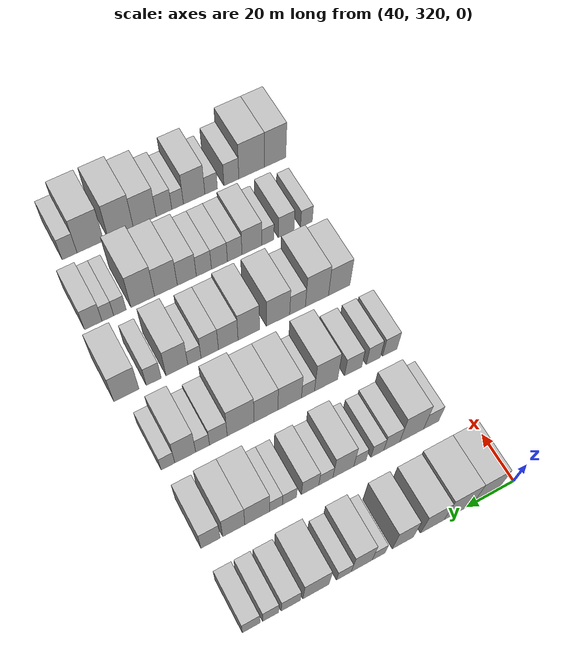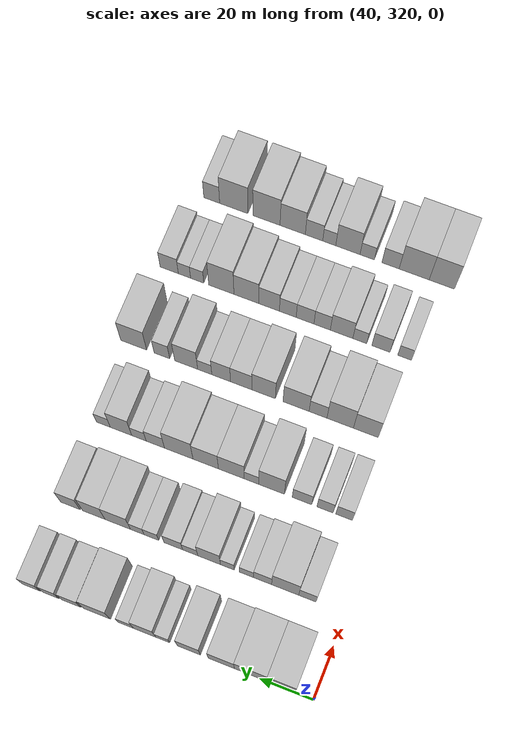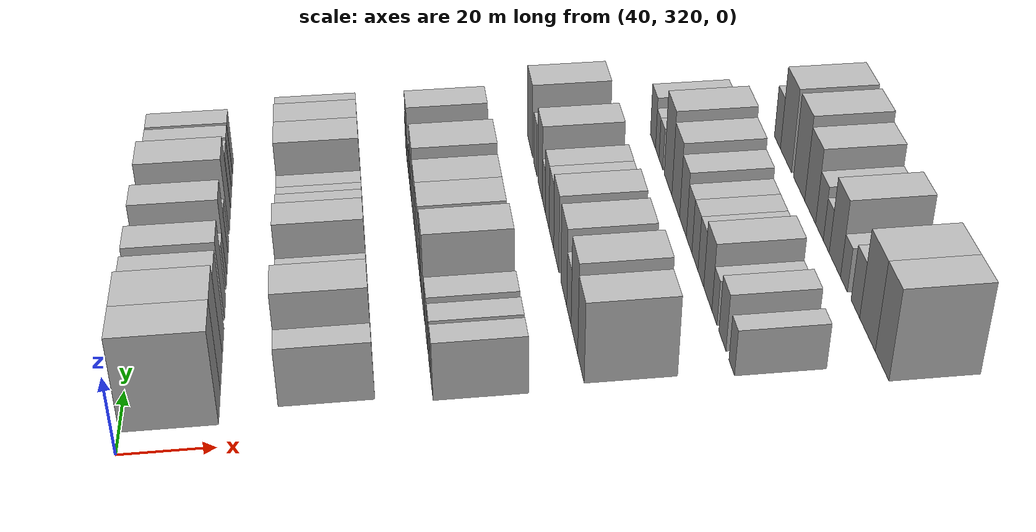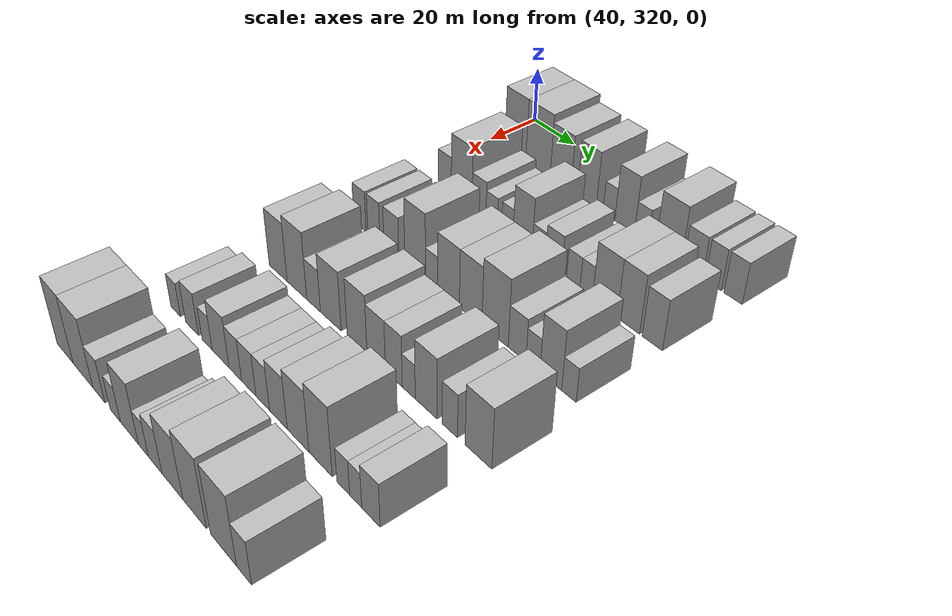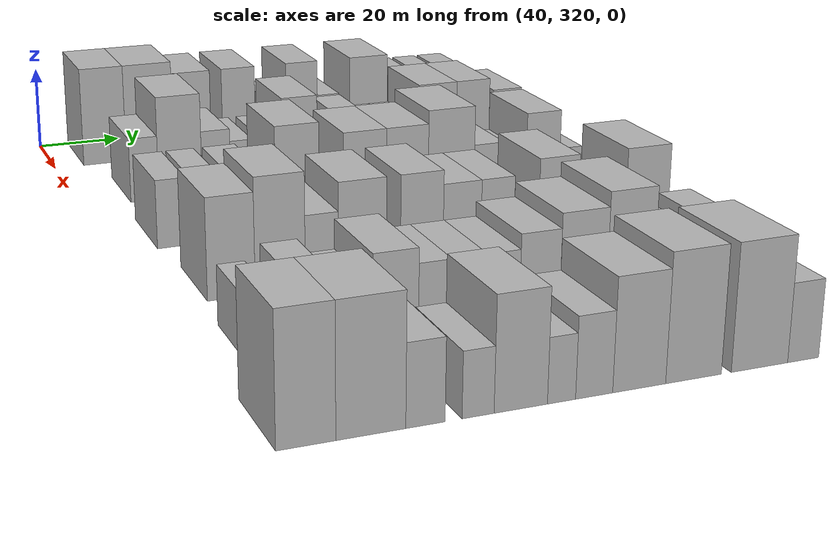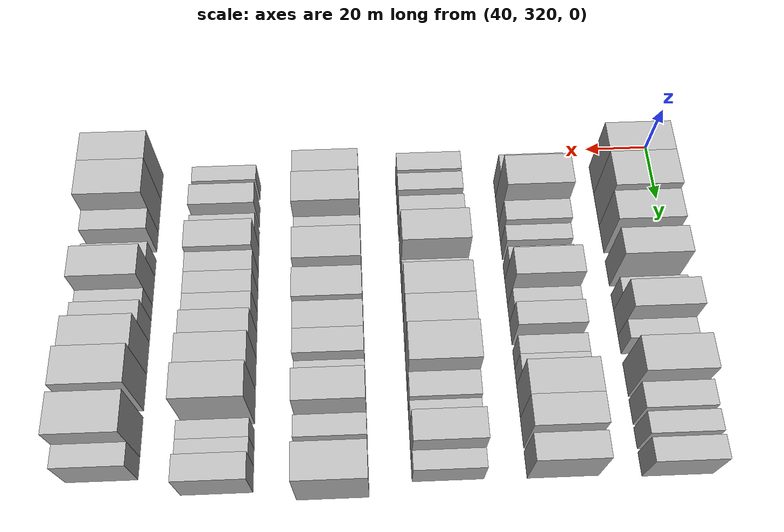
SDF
<sdf version="1.6">
 <world name="default">
  <model name="building_101">
   <static>1</static>
   <pose>50.0000 332.2577 0 0.000000 0.000000 0.000000</pose>
   <link name="link">
    <pose>0 0 12.00 0 0 0</pose>
    <collision name="collision"><geometry><box><size>20.0000 10.5424 24.0000</size></box></geometry></collision>
    <visual name="visual">
     <cast_shadows>0</cast_shadows>
     <geometry><box><size>20.0000 10.5424 24.0000</size></box></geometry>
     <material>
      <script>
       <uri>model://HANNAS_wall/materials/scripts</uri>
       <uri>model://HANNAS_wall/materials/textures</uri>
       <name>vrc/HANNAS_wall</name>
      </script>
     </material>
    </visual>
   </link>
  </model>
  <model name="building_102">
   <static>1</static>
   <pose>50.0000 343.5091 0 0.000000 0.000000 0.000000</pose>
   <link name="link">
    <pose>0 0 12.00 0 0 0</pose>
    <collision name="collision"><geometry><box><size>20.0000 11.9602 24.0000</size></box></geometry></collision>
    <visual name="visual">
     <cast_shadows>0</cast_shadows>
     <geometry><box><size>20.0000 11.9602 24.0000</size></box></geometry>
     <material>
      <script>
       <uri>model://HANNAS_wall/materials/scripts</uri>
       <uri>model://HANNAS_wall/materials/textures</uri>
       <name>vrc/HANNAS_wall</name>
      </script>
     </material>
    </visual>
   </link>
  </model>
  <model name="building_103">
   <static>1</static>
   <pose>50.0000 354.3774 0 0.000000 0.000000 0.000000</pose>
   <link name="link">
    <pose>0 0 10.50 0 0 0</pose>
    <collision name="collision"><geometry><box><size>20.0000 9.7764 21.0000</size></box></geometry></collision>
    <visual name="visual">
     <cast_shadows>0</cast_shadows>
     <geometry><box><size>20.0000 9.7764 21.0000</size></box></geometry>
     <material>
      <script>
       <uri>model://HANNAS_wall/materials/scripts</uri>
       <uri>model://HANNAS_wall/materials/textures</uri>
       <name>vrc/HANNAS_wall</name>
      </script>
     </material>
    </visual>
   </link>
  </model>
  <model name="building_104">
   <static>1</static>
   <pose>50.0000 366.5561 0 0.000000 0.000000 0.000000</pose>
   <link name="link">
    <pose>0 0 10.50 0 0 0</pose>
    <collision name="collision"><geometry><box><size>20.0000 8.5810 21.0000</size></box></geometry></collision>
    <visual name="visual">
     <cast_shadows>0</cast_shadows>
     <geometry><box><size>20.0000 8.5810 21.0000</size></box></geometry>
     <material>
      <script>
       <uri>model://HANNAS_wall/materials/scripts</uri>
       <uri>model://HANNAS_wall/materials/textures</uri>
       <name>vrc/HANNAS_wall</name>
      </script>
     </material>
    </visual>
   </link>
  </model>
  <model name="building_105">
   <static>1</static>
   <pose>50.0000 376.4607 0 0.000000 0.000000 0.000000</pose>
   <link name="link">
    <pose>0 0 6.00 0 0 0</pose>
    <collision name="collision"><geometry><box><size>20.0000 5.2283 12.0000</size></box></geometry></collision>
    <visual name="visual">
     <cast_shadows>0</cast_shadows>
     <geometry><box><size>20.0000 5.2283 12.0000</size></box></geometry>
     <material>
      <script>
       <uri>model://HANNAS_wall/materials/scripts</uri>
       <uri>model://HANNAS_wall/materials/textures</uri>
       <name>vrc/HANNAS_wall</name>
      </script>
     </material>
    </visual>
   </link>
  </model>
  <model name="building_106">
   <static>1</static>
   <pose>50.0000 383.2812 0 0.000000 0.000000 0.000000</pose>
   <link name="link">
    <pose>0 0 10.50 0 0 0</pose>
    <collision name="collision"><geometry><box><size>20.0000 8.4127 21.0000</size></box></geometry></collision>
    <visual name="visual">
     <cast_shadows>0</cast_shadows>
     <geometry><box><size>20.0000 8.4127 21.0000</size></box></geometry>
     <material>
      <script>
       <uri>model://HANNAS_wall/materials/scripts</uri>
       <uri>model://HANNAS_wall/materials/textures</uri>
       <name>vrc/HANNAS_wall</name>
      </script>
     </material>
    </visual>
   </link>
  </model>
  <model name="building_107">
   <static>1</static>
   <pose>50.0000 390.4088 0 0.000000 0.000000 0.000000</pose>
   <link name="link">
    <pose>0 0 6.00 0 0 0</pose>
    <collision name="collision"><geometry><box><size>20.0000 5.8426 12.0000</size></box></geometry></collision>
    <visual name="visual">
     <cast_shadows>0</cast_shadows>
     <geometry><box><size>20.0000 5.8426 12.0000</size></box></geometry>
     <material>
      <script>
       <uri>model://HANNAS_wall/materials/scripts</uri>
       <uri>model://HANNAS_wall/materials/textures</uri>
       <name>vrc/HANNAS_wall</name>
      </script>
     </material>
    </visual>
   </link>
  </model>
  <model name="building_108">
   <static>1</static>
   <pose>50.0000 401.4791 0 0.000000 0.000000 0.000000</pose>
   <link name="link">
    <pose>0 0 10.50 0 0 0</pose>
    <collision name="collision"><geometry><box><size>20.0000 10.2979 21.0000</size></box></geometry></collision>
    <visual name="visual">
     <cast_shadows>0</cast_shadows>
     <geometry><box><size>20.0000 10.2979 21.0000</size></box></geometry>
     <material>
      <script>
       <uri>model://HANNAS_wall/materials/scripts</uri>
       <uri>model://HANNAS_wall/materials/textures</uri>
       <name>vrc/HANNAS_wall</name>
      </script>
     </material>
    </visual>
   </link>
  </model>
  <model name="building_109">
   <static>1</static>
   <pose>50.0000 411.3379 0 0.000000 0.000000 0.000000</pose>
   <link name="link">
    <pose>0 0 7.50 0 0 0</pose>
    <collision name="collision"><geometry><box><size>20.0000 7.4198 15.0000</size></box></geometry></collision>
    <visual name="visual">
     <cast_shadows>0</cast_shadows>
     <geometry><box><size>20.0000 7.4198 15.0000</size></box></geometry>
     <material>
      <script>
       <uri>model://HANNAS_wall/materials/scripts</uri>
       <uri>model://HANNAS_wall/materials/textures</uri>
       <name>vrc/HANNAS_wall</name>
      </script>
     </material>
    </visual>
   </link>
  </model>
  <model name="building_110">
   <static>1</static>
   <pose>50.0000 419.1417 0 0.000000 0.000000 0.000000</pose>
   <link name="link">
    <pose>0 0 7.50 0 0 0</pose>
    <collision name="collision"><geometry><box><size>20.0000 6.1877 15.0000</size></box></geometry></collision>
    <visual name="visual">
     <cast_shadows>0</cast_shadows>
     <geometry><box><size>20.0000 6.1877 15.0000</size></box></geometry>
     <material>
      <script>
       <uri>model://HANNAS_wall/materials/scripts</uri>
       <uri>model://HANNAS_wall/materials/textures</uri>
       <name>vrc/HANNAS_wall</name>
      </script>
     </material>
    </visual>
   </link>
  </model>
  <model name="building_111">
   <static>1</static>
   <pose>50.0000 426.6084 0 0.000000 0.000000 0.000000</pose>
   <link name="link">
    <pose>0 0 7.50 0 0 0</pose>
    <collision name="collision"><geometry><box><size>20.0000 6.7458 15.0000</size></box></geometry></collision>
    <visual name="visual">
     <cast_shadows>0</cast_shadows>
     <geometry><box><size>20.0000 6.7458 15.0000</size></box></geometry>
     <material>
      <script>
       <uri>model://HANNAS_wall/materials/scripts</uri>
       <uri>model://HANNAS_wall/materials/textures</uri>
       <name>vrc/HANNAS_wall</name>
      </script>
     </material>
    </visual>
   </link>
  </model>
  <model name="building_215">
   <static>1</static>
   <pose>82.0000 334.5131 0 0.000000 0.000000 0.000000</pose>
   <link name="link">
    <pose>0 0 7.50 0 0 0</pose>
    <collision name="collision"><geometry><box><size>20.0000 6.5370 15.0000</size></box></geometry></collision>
    <visual name="visual">
     <cast_shadows>0</cast_shadows>
     <geometry><box><size>20.0000 6.5370 15.0000</size></box></geometry>
     <material>
      <script>
       <uri>model://HANNAS_wall/materials/scripts</uri>
       <uri>model://HANNAS_wall/materials/textures</uri>
       <name>vrc/HANNAS_wall</name>
      </script>
     </material>
    </visual>
   </link>
  </model>
  <model name="building_216">
   <static>1</static>
   <pose>82.0000 342.9099 0 0.000000 0.000000 0.000000</pose>
   <link name="link">
    <pose>0 0 12.00 0 0 0</pose>
    <collision name="collision"><geometry><box><size>20.0000 10.2567 24.0000</size></box></geometry></collision>
    <visual name="visual">
     <cast_shadows>0</cast_shadows>
     <geometry><box><size>20.0000 10.2567 24.0000</size></box></geometry>
     <material>
      <script>
       <uri>model://HANNAS_wall/materials/scripts</uri>
       <uri>model://HANNAS_wall/materials/textures</uri>
       <name>vrc/HANNAS_wall</name>
      </script>
     </material>
    </visual>
   </link>
  </model>
  <model name="building_217">
   <static>1</static>
   <pose>82.0000 351.4489 0 0.000000 0.000000 0.000000</pose>
   <link name="link">
    <pose>0 0 7.50 0 0 0</pose>
    <collision name="collision"><geometry><box><size>20.0000 6.8213 15.0000</size></box></geometry></collision>
    <visual name="visual">
     <cast_shadows>0</cast_shadows>
     <geometry><box><size>20.0000 6.8213 15.0000</size></box></geometry>
     <material>
      <script>
       <uri>model://HANNAS_wall/materials/scripts</uri>
       <uri>model://HANNAS_wall/materials/textures</uri>
       <name>vrc/HANNAS_wall</name>
      </script>
     </material>
    </visual>
   </link>
  </model>
  <model name="building_218">
   <static>1</static>
   <pose>82.0000 357.5694 0 0.000000 0.000000 0.000000</pose>
   <link name="link">
    <pose>0 0 6.00 0 0 0</pose>
    <collision name="collision"><geometry><box><size>20.0000 5.4196 12.0000</size></box></geometry></collision>
    <visual name="visual">
     <cast_shadows>0</cast_shadows>
     <geometry><box><size>20.0000 5.4196 12.0000</size></box></geometry>
     <material>
      <script>
       <uri>model://HANNAS_wall/materials/scripts</uri>
       <uri>model://HANNAS_wall/materials/textures</uri>
       <name>vrc/HANNAS_wall</name>
      </script>
     </material>
    </visual>
   </link>
  </model>
  <model name="building_219">
   <static>1</static>
   <pose>82.0000 364.8891 0 0.000000 0.000000 0.000000</pose>
   <link name="link">
    <pose>0 0 6.00 0 0 0</pose>
    <collision name="collision"><geometry><box><size>20.0000 5.2198 12.0000</size></box></geometry></collision>
    <visual name="visual">
     <cast_shadows>0</cast_shadows>
     <geometry><box><size>20.0000 5.2198 12.0000</size></box></geometry>
     <material>
      <script>
       <uri>model://HANNAS_wall/materials/scripts</uri>
       <uri>model://HANNAS_wall/materials/textures</uri>
       <name>vrc/HANNAS_wall</name>
      </script>
     </material>
    </visual>
   </link>
  </model>
  <model name="building_220">
   <static>1</static>
   <pose>82.0000 371.8438 0 0.000000 0.000000 0.000000</pose>
   <link name="link">
    <pose>0 0 10.50 0 0 0</pose>
    <collision name="collision"><geometry><box><size>20.0000 8.6897 21.0000</size></box></geometry></collision>
    <visual name="visual">
     <cast_shadows>0</cast_shadows>
     <geometry><box><size>20.0000 8.6897 21.0000</size></box></geometry>
     <material>
      <script>
       <uri>model://HANNAS_wall/materials/scripts</uri>
       <uri>model://HANNAS_wall/materials/textures</uri>
       <name>vrc/HANNAS_wall</name>
      </script>
     </material>
    </visual>
   </link>
  </model>
  <model name="building_221">
   <static>1</static>
   <pose>82.0000 379.0922 0 0.000000 0.000000 0.000000</pose>
   <link name="link">
    <pose>0 0 6.00 0 0 0</pose>
    <collision name="collision"><geometry><box><size>20.0000 5.8070 12.0000</size></box></geometry></collision>
    <visual name="visual">
     <cast_shadows>0</cast_shadows>
     <geometry><box><size>20.0000 5.8070 12.0000</size></box></geometry>
     <material>
      <script>
       <uri>model://HANNAS_wall/materials/scripts</uri>
       <uri>model://HANNAS_wall/materials/textures</uri>
       <name>vrc/HANNAS_wall</name>
      </script>
     </material>
    </visual>
   </link>
  </model>
  <model name="building_222">
   <static>1</static>
   <pose>82.0000 385.5773 0 0.000000 0.000000 0.000000</pose>
   <link name="link">
    <pose>0 0 7.50 0 0 0</pose>
    <collision name="collision"><geometry><box><size>20.0000 7.1633 15.0000</size></box></geometry></collision>
    <visual name="visual">
     <cast_shadows>0</cast_shadows>
     <geometry><box><size>20.0000 7.1633 15.0000</size></box></geometry>
     <material>
      <script>
       <uri>model://HANNAS_wall/materials/scripts</uri>
       <uri>model://HANNAS_wall/materials/textures</uri>
       <name>vrc/HANNAS_wall</name>
      </script>
     </material>
    </visual>
   </link>
  </model>
  <model name="building_223">
   <static>1</static>
   <pose>82.0000 394.0076 0 0.000000 0.000000 0.000000</pose>
   <link name="link">
    <pose>0 0 6.00 0 0 0</pose>
    <collision name="collision"><geometry><box><size>20.0000 5.6974 12.0000</size></box></geometry></collision>
    <visual name="visual">
     <cast_shadows>0</cast_shadows>
     <geometry><box><size>20.0000 5.6974 12.0000</size></box></geometry>
     <material>
      <script>
       <uri>model://HANNAS_wall/materials/scripts</uri>
       <uri>model://HANNAS_wall/materials/textures</uri>
       <name>vrc/HANNAS_wall</name>
      </script>
     </material>
    </visual>
   </link>
  </model>
  <model name="building_224">
   <static>1</static>
   <pose>82.0000 399.4667 0 0.000000 0.000000 0.000000</pose>
   <link name="link">
    <pose>0 0 6.00 0 0 0</pose>
    <collision name="collision"><geometry><box><size>20.0000 5.2207 12.0000</size></box></geometry></collision>
    <visual name="visual">
     <cast_shadows>0</cast_shadows>
     <geometry><box><size>20.0000 5.2207 12.0000</size></box></geometry>
     <material>
      <script>
       <uri>model://HANNAS_wall/materials/scripts</uri>
       <uri>model://HANNAS_wall/materials/textures</uri>
       <name>vrc/HANNAS_wall</name>
      </script>
     </material>
    </visual>
   </link>
  </model>
  <model name="building_225">
   <static>1</static>
   <pose>82.0000 407.0209 0 0.000000 0.000000 0.000000</pose>
   <link name="link">
    <pose>0 0 10.50 0 0 0</pose>
    <collision name="collision"><geometry><box><size>20.0000 9.8878 21.0000</size></box></geometry></collision>
    <visual name="visual">
     <cast_shadows>0</cast_shadows>
     <geometry><box><size>20.0000 9.8878 21.0000</size></box></geometry>
     <material>
      <script>
       <uri>model://HANNAS_wall/materials/scripts</uri>
       <uri>model://HANNAS_wall/materials/textures</uri>
       <name>vrc/HANNAS_wall</name>
      </script>
     </material>
    </visual>
   </link>
  </model>
  <model name="building_226">
   <static>1</static>
   <pose>82.0000 416.3304 0 0.000000 0.000000 0.000000</pose>
   <link name="link">
    <pose>0 0 10.50 0 0 0</pose>
    <collision name="collision"><geometry><box><size>20.0000 8.7313 21.0000</size></box></geometry></collision>
    <visual name="visual">
     <cast_shadows>0</cast_shadows>
     <geometry><box><size>20.0000 8.7313 21.0000</size></box></geometry>
     <material>
      <script>
       <uri>model://HANNAS_wall/materials/scripts</uri>
       <uri>model://HANNAS_wall/materials/textures</uri>
       <name>vrc/HANNAS_wall</name>
      </script>
     </material>
    </visual>
   </link>
  </model>
  <model name="building_227">
   <static>1</static>
   <pose>82.0000 425.4866 0 0.000000 0.000000 0.000000</pose>
   <link name="link">
    <pose>0 0 9.00 0 0 0</pose>
    <collision name="collision"><geometry><box><size>20.0000 7.5811 18.0000</size></box></geometry></collision>
    <visual name="visual">
     <cast_shadows>0</cast_shadows>
     <geometry><box><size>20.0000 7.5811 18.0000</size></box></geometry>
     <material>
      <script>
       <uri>model://HANNAS_wall/materials/scripts</uri>
       <uri>model://HANNAS_wall/materials/textures</uri>
       <name>vrc/HANNAS_wall</name>
      </script>
     </material>
    </visual>
   </link>
  </model>
  <model name="building_332">
   <static>1</static>
   <pose>114.0000 332.6350 0 0.000000 0.000000 0.000000</pose>
   <link name="link">
    <pose>0 0 7.50 0 0 0</pose>
    <collision name="collision"><geometry><box><size>20.0000 6.4068 15.0000</size></box></geometry></collision>
    <visual name="visual">
     <cast_shadows>0</cast_shadows>
     <geometry><box><size>20.0000 6.4068 15.0000</size></box></geometry>
     <material>
      <script>
       <uri>model://HANNAS_wall/materials/scripts</uri>
       <uri>model://HANNAS_wall/materials/textures</uri>
       <name>vrc/HANNAS_wall</name>
      </script>
     </material>
    </visual>
   </link>
  </model>
  <model name="building_333">
   <static>1</static>
   <pose>114.0000 339.9353 0 0.000000 0.000000 0.000000</pose>
   <link name="link">
    <pose>0 0 7.50 0 0 0</pose>
    <collision name="collision"><geometry><box><size>20.0000 6.1939 15.0000</size></box></geometry></collision>
    <visual name="visual">
     <cast_shadows>0</cast_shadows>
     <geometry><box><size>20.0000 6.1939 15.0000</size></box></geometry>
     <material>
      <script>
       <uri>model://HANNAS_wall/materials/scripts</uri>
       <uri>model://HANNAS_wall/materials/textures</uri>
       <name>vrc/HANNAS_wall</name>
      </script>
     </material>
    </visual>
   </link>
  </model>
  <model name="building_334">
   <static>1</static>
   <pose>114.0000 348.7750 0 0.000000 0.000000 0.000000</pose>
   <link name="link">
    <pose>0 0 7.50 0 0 0</pose>
    <collision name="collision"><geometry><box><size>20.0000 7.4856 15.0000</size></box></geometry></collision>
    <visual name="visual">
     <cast_shadows>0</cast_shadows>
     <geometry><box><size>20.0000 7.4856 15.0000</size></box></geometry>
     <material>
      <script>
       <uri>model://HANNAS_wall/materials/scripts</uri>
       <uri>model://HANNAS_wall/materials/textures</uri>
       <name>vrc/HANNAS_wall</name>
      </script>
     </material>
    </visual>
   </link>
  </model>
  <model name="building_335">
   <static>1</static>
   <pose>114.0000 360.4987 0 0.000000 0.000000 0.000000</pose>
   <link name="link">
    <pose>0 0 12.00 0 0 0</pose>
    <collision name="collision"><geometry><box><size>20.0000 9.9618 24.0000</size></box></geometry></collision>
    <visual name="visual">
     <cast_shadows>0</cast_shadows>
     <geometry><box><size>20.0000 9.9618 24.0000</size></box></geometry>
     <material>
      <script>
       <uri>model://HANNAS_wall/materials/scripts</uri>
       <uri>model://HANNAS_wall/materials/textures</uri>
       <name>vrc/HANNAS_wall</name>
      </script>
     </material>
    </visual>
   </link>
  </model>
  <model name="building_336">
   <static>1</static>
   <pose>114.0000 368.2742 0 0.000000 0.000000 0.000000</pose>
   <link name="link">
    <pose>0 0 6.00 0 0 0</pose>
    <collision name="collision"><geometry><box><size>20.0000 5.5891 12.0000</size></box></geometry></collision>
    <visual name="visual">
     <cast_shadows>0</cast_shadows>
     <geometry><box><size>20.0000 5.5891 12.0000</size></box></geometry>
     <material>
      <script>
       <uri>model://HANNAS_wall/materials/scripts</uri>
       <uri>model://HANNAS_wall/materials/textures</uri>
       <name>vrc/HANNAS_wall</name>
      </script>
     </material>
    </visual>
   </link>
  </model>
  <model name="building_337">
   <static>1</static>
   <pose>114.0000 376.0757 0 0.000000 0.000000 0.000000</pose>
   <link name="link">
    <pose>0 0 10.50 0 0 0</pose>
    <collision name="collision"><geometry><box><size>20.0000 10.0140 21.0000</size></box></geometry></collision>
    <visual name="visual">
     <cast_shadows>0</cast_shadows>
     <geometry><box><size>20.0000 10.0140 21.0000</size></box></geometry>
     <material>
      <script>
       <uri>model://HANNAS_wall/materials/scripts</uri>
       <uri>model://HANNAS_wall/materials/textures</uri>
       <name>vrc/HANNAS_wall</name>
      </script>
     </material>
    </visual>
   </link>
  </model>
  <model name="building_338">
   <static>1</static>
   <pose>114.0000 386.0358 0 0.000000 0.000000 0.000000</pose>
   <link name="link">
    <pose>0 0 10.50 0 0 0</pose>
    <collision name="collision"><geometry><box><size>20.0000 9.9062 21.0000</size></box></geometry></collision>
    <visual name="visual">
     <cast_shadows>0</cast_shadows>
     <geometry><box><size>20.0000 9.9062 21.0000</size></box></geometry>
     <material>
      <script>
       <uri>model://HANNAS_wall/materials/scripts</uri>
       <uri>model://HANNAS_wall/materials/textures</uri>
       <name>vrc/HANNAS_wall</name>
      </script>
     </material>
    </visual>
   </link>
  </model>
  <model name="building_339">
   <static>1</static>
   <pose>114.0000 396.5559 0 0.000000 0.000000 0.000000</pose>
   <link name="link">
    <pose>0 0 12.00 0 0 0</pose>
    <collision name="collision"><geometry><box><size>20.0000 11.1340 24.0000</size></box></geometry></collision>
    <visual name="visual">
     <cast_shadows>0</cast_shadows>
     <geometry><box><size>20.0000 11.1340 24.0000</size></box></geometry>
     <material>
      <script>
       <uri>model://HANNAS_wall/materials/scripts</uri>
       <uri>model://HANNAS_wall/materials/textures</uri>
       <name>vrc/HANNAS_wall</name>
      </script>
     </material>
    </visual>
   </link>
  </model>
  <model name="building_340">
   <static>1</static>
   <pose>114.0000 405.7410 0 0.000000 0.000000 0.000000</pose>
   <link name="link">
    <pose>0 0 7.50 0 0 0</pose>
    <collision name="collision"><geometry><box><size>20.0000 7.2362 15.0000</size></box></geometry></collision>
    <visual name="visual">
     <cast_shadows>0</cast_shadows>
     <geometry><box><size>20.0000 7.2362 15.0000</size></box></geometry>
     <material>
      <script>
       <uri>model://HANNAS_wall/materials/scripts</uri>
       <uri>model://HANNAS_wall/materials/textures</uri>
       <name>vrc/HANNAS_wall</name>
      </script>
     </material>
    </visual>
   </link>
  </model>
  <model name="building_341">
   <static>1</static>
   <pose>114.0000 412.1780 0 0.000000 0.000000 0.000000</pose>
   <link name="link">
    <pose>0 0 6.00 0 0 0</pose>
    <collision name="collision"><geometry><box><size>20.0000 5.6378 12.0000</size></box></geometry></collision>
    <visual name="visual">
     <cast_shadows>0</cast_shadows>
     <geometry><box><size>20.0000 5.6378 12.0000</size></box></geometry>
     <material>
      <script>
       <uri>model://HANNAS_wall/materials/scripts</uri>
       <uri>model://HANNAS_wall/materials/textures</uri>
       <name>vrc/HANNAS_wall</name>
      </script>
     </material>
    </visual>
   </link>
  </model>
  <model name="building_342">
   <static>1</static>
   <pose>114.0000 419.2298 0 0.000000 0.000000 0.000000</pose>
   <link name="link">
    <pose>0 0 10.50 0 0 0</pose>
    <collision name="collision"><geometry><box><size>20.0000 8.4659 21.0000</size></box></geometry></collision>
    <visual name="visual">
     <cast_shadows>0</cast_shadows>
     <geometry><box><size>20.0000 8.4659 21.0000</size></box></geometry>
     <material>
      <script>
       <uri>model://HANNAS_wall/materials/scripts</uri>
       <uri>model://HANNAS_wall/materials/textures</uri>
       <name>vrc/HANNAS_wall</name>
      </script>
     </material>
    </visual>
   </link>
  </model>
  <model name="building_343">
   <static>1</static>
   <pose>114.0000 426.2161 0 0.000000 0.000000 0.000000</pose>
   <link name="link">
    <pose>0 0 6.00 0 0 0</pose>
    <collision name="collision"><geometry><box><size>20.0000 5.5066 12.0000</size></box></geometry></collision>
    <visual name="visual">
     <cast_shadows>0</cast_shadows>
     <geometry><box><size>20.0000 5.5066 12.0000</size></box></geometry>
     <material>
      <script>
       <uri>model://HANNAS_wall/materials/scripts</uri>
       <uri>model://HANNAS_wall/materials/textures</uri>
       <name>vrc/HANNAS_wall</name>
      </script>
     </material>
    </visual>
   </link>
  </model>
  <model name="building_450">
   <static>1</static>
   <pose>146.0000 336.1129 0 0.000000 0.000000 0.000000</pose>
   <link name="link">
    <pose>0 0 10.50 0 0 0</pose>
    <collision name="collision"><geometry><box><size>20.0000 9.6407 21.0000</size></box></geometry></collision>
    <visual name="visual">
     <cast_shadows>0</cast_shadows>
     <geometry><box><size>20.0000 9.6407 21.0000</size></box></geometry>
     <material>
      <script>
       <uri>model://HANNAS_wall/materials/scripts</uri>
       <uri>model://HANNAS_wall/materials/textures</uri>
       <name>vrc/HANNAS_wall</name>
      </script>
     </material>
    </visual>
   </link>
  </model>
  <model name="building_451">
   <static>1</static>
   <pose>146.0000 346.0907 0 0.000000 0.000000 0.000000</pose>
   <link name="link">
    <pose>0 0 12.00 0 0 0</pose>
    <collision name="collision"><geometry><box><size>20.0000 10.3149 24.0000</size></box></geometry></collision>
    <visual name="visual">
     <cast_shadows>0</cast_shadows>
     <geometry><box><size>20.0000 10.3149 24.0000</size></box></geometry>
     <material>
      <script>
       <uri>model://HANNAS_wall/materials/scripts</uri>
       <uri>model://HANNAS_wall/materials/textures</uri>
       <name>vrc/HANNAS_wall</name>
      </script>
     </material>
    </visual>
   </link>
  </model>
  <model name="building_452">
   <static>1</static>
   <pose>146.0000 354.7258 0 0.000000 0.000000 0.000000</pose>
   <link name="link">
    <pose>0 0 7.50 0 0 0</pose>
    <collision name="collision"><geometry><box><size>20.0000 6.9554 15.0000</size></box></geometry></collision>
    <visual name="visual">
     <cast_shadows>0</cast_shadows>
     <geometry><box><size>20.0000 6.9554 15.0000</size></box></geometry>
     <material>
      <script>
       <uri>model://HANNAS_wall/materials/scripts</uri>
       <uri>model://HANNAS_wall/materials/textures</uri>
       <name>vrc/HANNAS_wall</name>
      </script>
     </material>
    </visual>
   </link>
  </model>
  <model name="building_453">
   <static>1</static>
   <pose>146.0000 363.3065 0 0.000000 0.000000 0.000000</pose>
   <link name="link">
    <pose>0 0 10.50 0 0 0</pose>
    <collision name="collision"><geometry><box><size>20.0000 10.2059 21.0000</size></box></geometry></collision>
    <visual name="visual">
     <cast_shadows>0</cast_shadows>
     <geometry><box><size>20.0000 10.2059 21.0000</size></box></geometry>
     <material>
      <script>
       <uri>model://HANNAS_wall/materials/scripts</uri>
       <uri>model://HANNAS_wall/materials/textures</uri>
       <name>vrc/HANNAS_wall</name>
      </script>
     </material>
    </visual>
   </link>
  </model>
  <model name="building_454">
   <static>1</static>
   <pose>146.0000 376.0482 0 0.000000 0.000000 0.000000</pose>
   <link name="link">
    <pose>0 0 10.50 0 0 0</pose>
    <collision name="collision"><geometry><box><size>20.0000 9.2775 21.0000</size></box></geometry></collision>
    <visual name="visual">
     <cast_shadows>0</cast_shadows>
     <geometry><box><size>20.0000 9.2775 21.0000</size></box></geometry>
     <material>
      <script>
       <uri>model://HANNAS_wall/materials/scripts</uri>
       <uri>model://HANNAS_wall/materials/textures</uri>
       <name>vrc/HANNAS_wall</name>
      </script>
     </material>
    </visual>
   </link>
  </model>
  <model name="building_455">
   <static>1</static>
   <pose>146.0000 384.8790 0 0.000000 0.000000 0.000000</pose>
   <link name="link">
    <pose>0 0 9.00 0 0 0</pose>
    <collision name="collision"><geometry><box><size>20.0000 8.3842 18.0000</size></box></geometry></collision>
    <visual name="visual">
     <cast_shadows>0</cast_shadows>
     <geometry><box><size>20.0000 8.3842 18.0000</size></box></geometry>
     <material>
      <script>
       <uri>model://HANNAS_wall/materials/scripts</uri>
       <uri>model://HANNAS_wall/materials/textures</uri>
       <name>vrc/HANNAS_wall</name>
      </script>
     </material>
    </visual>
   </link>
  </model>
  <model name="building_456">
   <static>1</static>
   <pose>146.0000 392.7729 0 0.000000 0.000000 0.000000</pose>
   <link name="link">
    <pose>0 0 9.00 0 0 0</pose>
    <collision name="collision"><geometry><box><size>20.0000 7.4036 18.0000</size></box></geometry></collision>
    <visual name="visual">
     <cast_shadows>0</cast_shadows>
     <geometry><box><size>20.0000 7.4036 18.0000</size></box></geometry>
     <material>
      <script>
       <uri>model://HANNAS_wall/materials/scripts</uri>
       <uri>model://HANNAS_wall/materials/textures</uri>
       <name>vrc/HANNAS_wall</name>
      </script>
     </material>
    </visual>
   </link>
  </model>
  <model name="building_457">
   <static>1</static>
   <pose>146.0000 399.2785 0 0.000000 0.000000 0.000000</pose>
   <link name="link">
    <pose>0 0 6.00 0 0 0</pose>
    <collision name="collision"><geometry><box><size>20.0000 5.6075 12.0000</size></box></geometry></collision>
    <visual name="visual">
     <cast_shadows>0</cast_shadows>
     <geometry><box><size>20.0000 5.6075 12.0000</size></box></geometry>
     <material>
      <script>
       <uri>model://HANNAS_wall/materials/scripts</uri>
       <uri>model://HANNAS_wall/materials/textures</uri>
       <name>vrc/HANNAS_wall</name>
      </script>
     </material>
    </visual>
   </link>
  </model>
  <model name="building_458">
   <static>1</static>
   <pose>146.0000 406.6568 0 0.000000 0.000000 0.000000</pose>
   <link name="link">
    <pose>0 0 10.50 0 0 0</pose>
    <collision name="collision"><geometry><box><size>20.0000 9.1490 21.0000</size></box></geometry></collision>
    <visual name="visual">
     <cast_shadows>0</cast_shadows>
     <geometry><box><size>20.0000 9.1490 21.0000</size></box></geometry>
     <material>
      <script>
       <uri>model://HANNAS_wall/materials/scripts</uri>
       <uri>model://HANNAS_wall/materials/textures</uri>
       <name>vrc/HANNAS_wall</name>
      </script>
     </material>
    </visual>
   </link>
  </model>
  <model name="building_459">
   <static>1</static>
   <pose>146.0000 416.3332 0 0.000000 0.000000 0.000000</pose>
   <link name="link">
    <pose>0 0 7.50 0 0 0</pose>
    <collision name="collision"><geometry><box><size>20.0000 6.2038 15.0000</size></box></geometry></collision>
    <visual name="visual">
     <cast_shadows>0</cast_shadows>
     <geometry><box><size>20.0000 6.2038 15.0000</size></box></geometry>
     <material>
      <script>
       <uri>model://HANNAS_wall/materials/scripts</uri>
       <uri>model://HANNAS_wall/materials/textures</uri>
       <name>vrc/HANNAS_wall</name>
      </script>
     </material>
    </visual>
   </link>
  </model>
  <model name="building_460">
   <static>1</static>
   <pose>146.0000 427.6116 0 0.000000 0.000000 0.000000</pose>
   <link name="link">
    <pose>0 0 10.50 0 0 0</pose>
    <collision name="collision"><geometry><box><size>20.0000 10.3530 21.0000</size></box></geometry></collision>
    <visual name="visual">
     <cast_shadows>0</cast_shadows>
     <geometry><box><size>20.0000 10.3530 21.0000</size></box></geometry>
     <material>
      <script>
       <uri>model://HANNAS_wall/materials/scripts</uri>
       <uri>model://HANNAS_wall/materials/textures</uri>
       <name>vrc/HANNAS_wall</name>
      </script>
     </material>
    </visual>
   </link>
  </model>
  <model name="building_573">
   <static>1</static>
   <pose>178.0000 332.6606 0 0.000000 0.000000 0.000000</pose>
   <link name="link">
    <pose>0 0 6.00 0 0 0</pose>
    <collision name="collision"><geometry><box><size>20.0000 5.4260 12.0000</size></box></geometry></collision>
    <visual name="visual">
     <cast_shadows>0</cast_shadows>
     <geometry><box><size>20.0000 5.4260 12.0000</size></box></geometry>
     <material>
      <script>
       <uri>model://HANNAS_wall/materials/scripts</uri>
       <uri>model://HANNAS_wall/materials/textures</uri>
       <name>vrc/HANNAS_wall</name>
      </script>
     </material>
    </visual>
   </link>
  </model>
  <model name="building_574">
   <static>1</static>
   <pose>178.0000 341.9670 0 0.000000 0.000000 0.000000</pose>
   <link name="link">
    <pose>0 0 7.50 0 0 0</pose>
    <collision name="collision"><geometry><box><size>20.0000 7.1868 15.0000</size></box></geometry></collision>
    <visual name="visual">
     <cast_shadows>0</cast_shadows>
     <geometry><box><size>20.0000 7.1868 15.0000</size></box></geometry>
     <material>
      <script>
       <uri>model://HANNAS_wall/materials/scripts</uri>
       <uri>model://HANNAS_wall/materials/textures</uri>
       <name>vrc/HANNAS_wall</name>
      </script>
     </material>
    </visual>
   </link>
  </model>
  <model name="building_575">
   <static>1</static>
   <pose>178.0000 350.2962 0 0.000000 0.000000 0.000000</pose>
   <link name="link">
    <pose>0 0 6.00 0 0 0</pose>
    <collision name="collision"><geometry><box><size>20.0000 5.4715 12.0000</size></box></geometry></collision>
    <visual name="visual">
     <cast_shadows>0</cast_shadows>
     <geometry><box><size>20.0000 5.4715 12.0000</size></box></geometry>
     <material>
      <script>
       <uri>model://HANNAS_wall/materials/scripts</uri>
       <uri>model://HANNAS_wall/materials/textures</uri>
       <name>vrc/HANNAS_wall</name>
      </script>
     </material>
    </visual>
   </link>
  </model>
  <model name="building_576">
   <static>1</static>
   <pose>178.0000 357.4896 0 0.000000 0.000000 0.000000</pose>
   <link name="link">
    <pose>0 0 9.00 0 0 0</pose>
    <collision name="collision"><geometry><box><size>20.0000 8.9154 18.0000</size></box></geometry></collision>
    <visual name="visual">
     <cast_shadows>0</cast_shadows>
     <geometry><box><size>20.0000 8.9154 18.0000</size></box></geometry>
     <material>
      <script>
       <uri>model://HANNAS_wall/materials/scripts</uri>
       <uri>model://HANNAS_wall/materials/textures</uri>
       <name>vrc/HANNAS_wall</name>
      </script>
     </material>
    </visual>
   </link>
  </model>
  <model name="building_577">
   <static>1</static>
   <pose>178.0000 365.1969 0 0.000000 0.000000 0.000000</pose>
   <link name="link">
    <pose>0 0 7.50 0 0 0</pose>
    <collision name="collision"><geometry><box><size>20.0000 6.4990 15.0000</size></box></geometry></collision>
    <visual name="visual">
     <cast_shadows>0</cast_shadows>
     <geometry><box><size>20.0000 6.4990 15.0000</size></box></geometry>
     <material>
      <script>
       <uri>model://HANNAS_wall/materials/scripts</uri>
       <uri>model://HANNAS_wall/materials/textures</uri>
       <name>vrc/HANNAS_wall</name>
      </script>
     </material>
    </visual>
   </link>
  </model>
  <model name="building_578">
   <static>1</static>
   <pose>178.0000 371.9851 0 0.000000 0.000000 0.000000</pose>
   <link name="link">
    <pose>0 0 7.50 0 0 0</pose>
    <collision name="collision"><geometry><box><size>20.0000 7.0776 15.0000</size></box></geometry></collision>
    <visual name="visual">
     <cast_shadows>0</cast_shadows>
     <geometry><box><size>20.0000 7.0776 15.0000</size></box></geometry>
     <material>
      <script>
       <uri>model://HANNAS_wall/materials/scripts</uri>
       <uri>model://HANNAS_wall/materials/textures</uri>
       <name>vrc/HANNAS_wall</name>
      </script>
     </material>
    </visual>
   </link>
  </model>
  <model name="building_579">
   <static>1</static>
   <pose>178.0000 378.8616 0 0.000000 0.000000 0.000000</pose>
   <link name="link">
    <pose>0 0 7.50 0 0 0</pose>
    <collision name="collision"><geometry><box><size>20.0000 6.6755 15.0000</size></box></geometry></collision>
    <visual name="visual">
     <cast_shadows>0</cast_shadows>
     <geometry><box><size>20.0000 6.6755 15.0000</size></box></geometry>
     <material>
      <script>
       <uri>model://HANNAS_wall/materials/scripts</uri>
       <uri>model://HANNAS_wall/materials/textures</uri>
       <name>vrc/HANNAS_wall</name>
      </script>
     </material>
    </visual>
   </link>
  </model>
  <model name="building_580">
   <static>1</static>
   <pose>178.0000 386.3573 0 0.000000 0.000000 0.000000</pose>
   <link name="link">
    <pose>0 0 9.00 0 0 0</pose>
    <collision name="collision"><geometry><box><size>20.0000 8.3157 18.0000</size></box></geometry></collision>
    <visual name="visual">
     <cast_shadows>0</cast_shadows>
     <geometry><box><size>20.0000 8.3157 18.0000</size></box></geometry>
     <material>
      <script>
       <uri>model://HANNAS_wall/materials/scripts</uri>
       <uri>model://HANNAS_wall/materials/textures</uri>
       <name>vrc/HANNAS_wall</name>
      </script>
     </material>
    </visual>
   </link>
  </model>
  <model name="building_581">
   <static>1</static>
   <pose>178.0000 395.4587 0 0.000000 0.000000 0.000000</pose>
   <link name="link">
    <pose>0 0 10.50 0 0 0</pose>
    <collision name="collision"><geometry><box><size>20.0000 9.8871 21.0000</size></box></geometry></collision>
    <visual name="visual">
     <cast_shadows>0</cast_shadows>
     <geometry><box><size>20.0000 9.8871 21.0000</size></box></geometry>
     <material>
      <script>
       <uri>model://HANNAS_wall/materials/scripts</uri>
       <uri>model://HANNAS_wall/materials/textures</uri>
       <name>vrc/HANNAS_wall</name>
      </script>
     </material>
    </visual>
   </link>
  </model>
  <model name="building_582">
   <static>1</static>
   <pose>178.0000 405.4805 0 0.000000 0.000000 0.000000</pose>
   <link name="link">
    <pose>0 0 12.00 0 0 0</pose>
    <collision name="collision"><geometry><box><size>20.0000 10.1566 24.0000</size></box></geometry></collision>
    <visual name="visual">
     <cast_shadows>0</cast_shadows>
     <geometry><box><size>20.0000 10.1566 24.0000</size></box></geometry>
     <material>
      <script>
       <uri>model://HANNAS_wall/materials/scripts</uri>
       <uri>model://HANNAS_wall/materials/textures</uri>
       <name>vrc/HANNAS_wall</name>
      </script>
     </material>
    </visual>
   </link>
  </model>
  <model name="building_583">
   <static>1</static>
   <pose>178.0000 415.2160 0 0.000000 0.000000 0.000000</pose>
   <link name="link">
    <pose>0 0 6.00 0 0 0</pose>
    <collision name="collision"><geometry><box><size>20.0000 5.3143 12.0000</size></box></geometry></collision>
    <visual name="visual">
     <cast_shadows>0</cast_shadows>
     <geometry><box><size>20.0000 5.3143 12.0000</size></box></geometry>
     <material>
      <script>
       <uri>model://HANNAS_wall/materials/scripts</uri>
       <uri>model://HANNAS_wall/materials/textures</uri>
       <name>vrc/HANNAS_wall</name>
      </script>
     </material>
    </visual>
   </link>
  </model>
  <model name="building_584">
   <static>1</static>
   <pose>178.0000 420.3466 0 0.000000 0.000000 0.000000</pose>
   <link name="link">
    <pose>0 0 6.00 0 0 0</pose>
    <collision name="collision"><geometry><box><size>20.0000 4.9469 12.0000</size></box></geometry></collision>
    <visual name="visual">
     <cast_shadows>0</cast_shadows>
     <geometry><box><size>20.0000 4.9469 12.0000</size></box></geometry>
     <material>
      <script>
       <uri>model://HANNAS_wall/materials/scripts</uri>
       <uri>model://HANNAS_wall/materials/textures</uri>
       <name>vrc/HANNAS_wall</name>
      </script>
     </material>
    </visual>
   </link>
  </model>
  <model name="building_585">
   <static>1</static>
   <pose>178.0000 426.5109 0 0.000000 0.000000 0.000000</pose>
   <link name="link">
    <pose>0 0 7.50 0 0 0</pose>
    <collision name="collision"><geometry><box><size>20.0000 7.3817 15.0000</size></box></geometry></collision>
    <visual name="visual">
     <cast_shadows>0</cast_shadows>
     <geometry><box><size>20.0000 7.3817 15.0000</size></box></geometry>
     <material>
      <script>
       <uri>model://HANNAS_wall/materials/scripts</uri>
       <uri>model://HANNAS_wall/materials/textures</uri>
       <name>vrc/HANNAS_wall</name>
      </script>
     </material>
    </visual>
   </link>
  </model>
  <model name="building_687">
   <static>1</static>
   <pose>210.0000 329.3813 0 0.000000 0.000000 0.000000</pose>
   <link name="link">
    <pose>0 0 12.00 0 0 0</pose>
    <collision name="collision"><geometry><box><size>20.0000 10.0337 24.0000</size></box></geometry></collision>
    <visual name="visual">
     <cast_shadows>0</cast_shadows>
     <geometry><box><size>20.0000 10.0337 24.0000</size></box></geometry>
     <material>
      <script>
       <uri>model://HANNAS_wall/materials/scripts</uri>
       <uri>model://HANNAS_wall/materials/textures</uri>
       <name>vrc/HANNAS_wall</name>
      </script>
     </material>
    </visual>
   </link>
  </model>
  <model name="building_688">
   <static>1</static>
   <pose>210.0000 340.3868 0 0.000000 0.000000 0.000000</pose>
   <link name="link">
    <pose>0 0 12.00 0 0 0</pose>
    <collision name="collision"><geometry><box><size>20.0000 11.9774 24.0000</size></box></geometry></collision>
    <visual name="visual">
     <cast_shadows>0</cast_shadows>
     <geometry><box><size>20.0000 11.9774 24.0000</size></box></geometry>
     <material>
      <script>
       <uri>model://HANNAS_wall/materials/scripts</uri>
       <uri>model://HANNAS_wall/materials/textures</uri>
       <name>vrc/HANNAS_wall</name>
      </script>
     </material>
    </visual>
   </link>
  </model>
  <model name="building_689">
   <static>1</static>
   <pose>210.0000 349.8228 0 0.000000 0.000000 0.000000</pose>
   <link name="link">
    <pose>0 0 7.50 0 0 0</pose>
    <collision name="collision"><geometry><box><size>20.0000 6.8945 15.0000</size></box></geometry></collision>
    <visual name="visual">
     <cast_shadows>0</cast_shadows>
     <geometry><box><size>20.0000 6.8945 15.0000</size></box></geometry>
     <material>
      <script>
       <uri>model://HANNAS_wall/materials/scripts</uri>
       <uri>model://HANNAS_wall/materials/textures</uri>
       <name>vrc/HANNAS_wall</name>
      </script>
     </material>
    </visual>
   </link>
  </model>
  <model name="building_690">
   <static>1</static>
   <pose>210.0000 359.1486 0 0.000000 0.000000 0.000000</pose>
   <link name="link">
    <pose>0 0 6.00 0 0 0</pose>
    <collision name="collision"><geometry><box><size>20.0000 5.7571 12.0000</size></box></geometry></collision>
    <visual name="visual">
     <cast_shadows>0</cast_shadows>
     <geometry><box><size>20.0000 5.7571 12.0000</size></box></geometry>
     <material>
      <script>
       <uri>model://HANNAS_wall/materials/scripts</uri>
       <uri>model://HANNAS_wall/materials/textures</uri>
       <name>vrc/HANNAS_wall</name>
      </script>
     </material>
    </visual>
   </link>
  </model>
  <model name="building_691">
   <static>1</static>
   <pose>210.0000 366.9102 0 0.000000 0.000000 0.000000</pose>
   <link name="link">
    <pose>0 0 10.50 0 0 0</pose>
    <collision name="collision"><geometry><box><size>20.0000 9.7662 21.0000</size></box></geometry></collision>
    <visual name="visual">
     <cast_shadows>0</cast_shadows>
     <geometry><box><size>20.0000 9.7662 21.0000</size></box></geometry>
     <material>
      <script>
       <uri>model://HANNAS_wall/materials/scripts</uri>
       <uri>model://HANNAS_wall/materials/textures</uri>
       <name>vrc/HANNAS_wall</name>
      </script>
     </material>
    </visual>
   </link>
  </model>
  <model name="building_692">
   <static>1</static>
   <pose>210.0000 374.4181 0 0.000000 0.000000 0.000000</pose>
   <link name="link">
    <pose>0 0 6.00 0 0 0</pose>
    <collision name="collision"><geometry><box><size>20.0000 5.2496 12.0000</size></box></geometry></collision>
    <visual name="visual">
     <cast_shadows>0</cast_shadows>
     <geometry><box><size>20.0000 5.2496 12.0000</size></box></geometry>
     <material>
      <script>
       <uri>model://HANNAS_wall/materials/scripts</uri>
       <uri>model://HANNAS_wall/materials/textures</uri>
       <name>vrc/HANNAS_wall</name>
      </script>
     </material>
    </visual>
   </link>
  </model>
  <model name="building_693">
   <static>1</static>
   <pose>210.0000 380.5607 0 0.000000 0.000000 0.000000</pose>
   <link name="link">
    <pose>0 0 7.50 0 0 0</pose>
    <collision name="collision"><geometry><box><size>20.0000 7.0357 15.0000</size></box></geometry></collision>
    <visual name="visual">
     <cast_shadows>0</cast_shadows>
     <geometry><box><size>20.0000 7.0357 15.0000</size></box></geometry>
     <material>
      <script>
       <uri>model://HANNAS_wall/materials/scripts</uri>
       <uri>model://HANNAS_wall/materials/textures</uri>
       <name>vrc/HANNAS_wall</name>
      </script>
     </material>
    </visual>
   </link>
  </model>
  <model name="building_694">
   <static>1</static>
   <pose>210.0000 389.2040 0 0.000000 0.000000 0.000000</pose>
   <link name="link">
    <pose>0 0 10.50 0 0 0</pose>
    <collision name="collision"><geometry><box><size>20.0000 10.2508 21.0000</size></box></geometry></collision>
    <visual name="visual">
     <cast_shadows>0</cast_shadows>
     <geometry><box><size>20.0000 10.2508 21.0000</size></box></geometry>
     <material>
      <script>
       <uri>model://HANNAS_wall/materials/scripts</uri>
       <uri>model://HANNAS_wall/materials/textures</uri>
       <name>vrc/HANNAS_wall</name>
      </script>
     </material>
    </visual>
   </link>
  </model>
  <model name="building_695">
   <static>1</static>
   <pose>210.0000 399.8598 0 0.000000 0.000000 0.000000</pose>
   <link name="link">
    <pose>0 0 12.00 0 0 0</pose>
    <collision name="collision"><geometry><box><size>20.0000 11.0608 24.0000</size></box></geometry></collision>
    <visual name="visual">
     <cast_shadows>0</cast_shadows>
     <geometry><box><size>20.0000 11.0608 24.0000</size></box></geometry>
     <material>
      <script>
       <uri>model://HANNAS_wall/materials/scripts</uri>
       <uri>model://HANNAS_wall/materials/textures</uri>
       <name>vrc/HANNAS_wall</name>
      </script>
     </material>
    </visual>
   </link>
  </model>
  <model name="building_696">
   <static>1</static>
   <pose>210.0000 413.1677 0 0.000000 0.000000 0.000000</pose>
   <link name="link">
    <pose>0 0 12.00 0 0 0</pose>
    <collision name="collision"><geometry><box><size>20.0000 11.5550 24.0000</size></box></geometry></collision>
    <visual name="visual">
     <cast_shadows>0</cast_shadows>
     <geometry><box><size>20.0000 11.5550 24.0000</size></box></geometry>
     <material>
      <script>
       <uri>model://HANNAS_wall/materials/scripts</uri>
       <uri>model://HANNAS_wall/materials/textures</uri>
       <name>vrc/HANNAS_wall</name>
      </script>
     </material>
    </visual>
   </link>
  </model>
  <model name="building_697">
   <static>1</static>
   <pose>210.0000 422.1837 0 0.000000 0.000000 0.000000</pose>
   <link name="link">
    <pose>0 0 7.50 0 0 0</pose>
    <collision name="collision"><geometry><box><size>20.0000 6.4771 15.0000</size></box></geometry></collision>
    <visual name="visual">
     <cast_shadows>0</cast_shadows>
     <geometry><box><size>20.0000 6.4771 15.0000</size></box></geometry>
     <material>
      <script>
       <uri>model://HANNAS_wall/materials/scripts</uri>
       <uri>model://HANNAS_wall/materials/textures</uri>
       <name>vrc/HANNAS_wall</name>
      </script>
     </material>
    </visual>
   </link>
  </model>
 </world>
</sdf>
